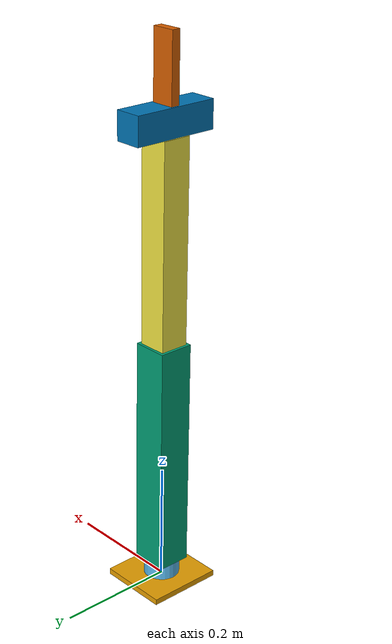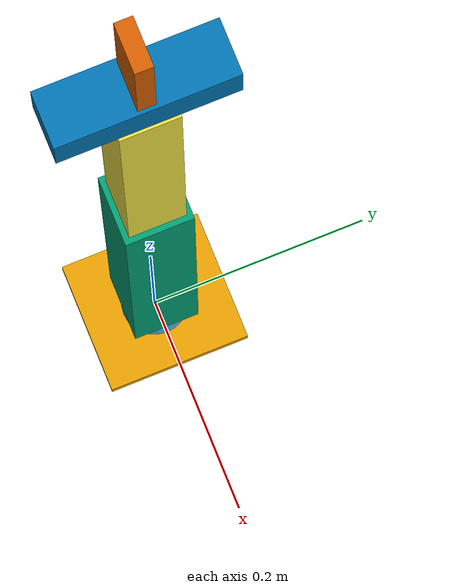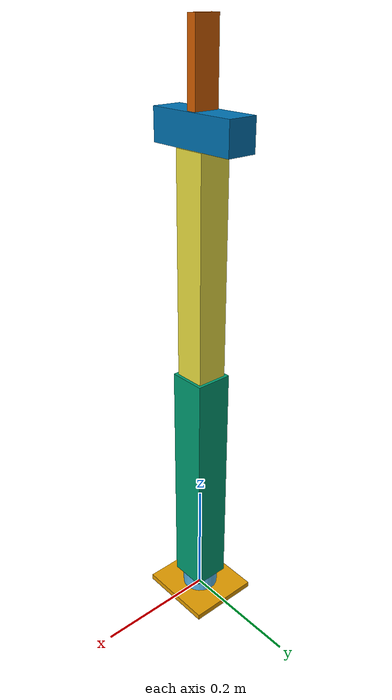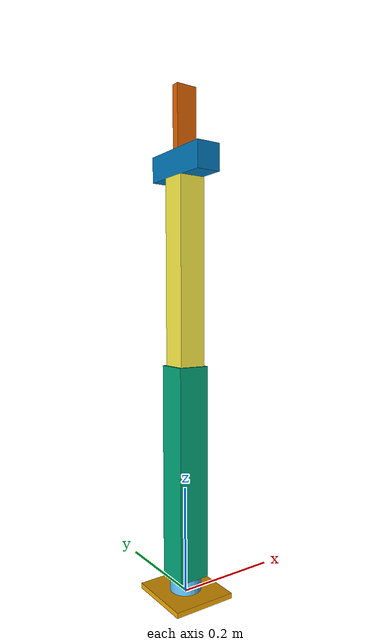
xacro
<?xml version="1.0"?>

<robot name="theia2arm" xmlns:xacro="http://www.ros.org/wiki/xacro">

        <link name="base_link">
        <visual>

                <geometry>
                        <box size="0.12 0.13 0.01" />
                </geometry>
        </visual>
        </link>

        <joint name="base_link__link_01" type="continuous">
                <axis xyz="0 0 1" />
                <limit effort="1000.0" lower="-3.14" upper="3.14" velocity="0.5" />
                <origin rpy="0 0 0" xyz="0 0 0.005"/>
                <parent link="base_link"/>
                <child link="link_01"/>
        </joint>

        <link name="link_01">
        <visual>
                <origin rpy="0 0 0" xyz="0 0 0.0135" />
                <geometry>
                        <cylinder radius="0.03" length="0.027" />
                </geometry>
        </visual>
        </link>

        <joint name="link_01__link_02" type="continuous">
                <axis xyz="0 1 0" />
                <limit effort="1000.0" lower="-3.14" upper="3.14" velocity="0.5" />
                <origin rpy="0 0 0" xyz="0 0 0.027"/>
                <parent link="link_01"/>
                <child link="link_02"/>
        </joint>

        <link name="link_02">
        <visual>
                <origin rpy="0 0 0" xyz="0 0 0.2" />
                <geometry>
                        <box size="0.06 0.06 0.4" />
                </geometry>
        </visual>
        </link>

        <joint name="link_02__link_03" type="continuous">
                <axis xyz="0 1 0" />
                <limit effort="1" lower="-3.14" upper="3.14" velocity="0.5" />
                <dynamics damping="0.0" friction="0.0"/>
                <parent link="link_02"/>
                <child link="link_03"/>
                <origin xyz=" 0 0 0.4"/>
        </joint>

        <link name="link_03">
        <visual>
                <origin xyz="0 0 0.17" />
                <geometry>
                        <box size="0.05 0.05 0.34" />
                </geometry>
        </visual>
        </link>

        <joint name="link_03__endeffector_y" type="continuous">
                <axis xyz="0 1 0" />
                <limit effort="1" lower="-3.14" upper="3.14" velocity="0.5" />
                <dynamics damping="0.0" friction="0.0"/>
                <parent link="link_03"/>
                <child link="endeffector_y"/>
                <origin rpy="0 0 0" xyz=" 0 0 0.34"/>
        </joint>

        <link name="endeffector_y">
        <visual>
                <origin rpy="0 0 0" xyz="0 0 0.0235" />
                <geometry>
                        <box size="0.046 0.148 0.047" />
                </geometry>
        </visual>
        </link>

        <joint name="endeffector_y__endeffector" type="continuous">
                <axis xyz="0 0 1" />
                <limit effort="1" lower="-3.14" upper="3.14" velocity="0.5" />
                <parent link="endeffector_y"/>
                <child link="endeffector"/>
                <origin rpy="0 0 0" xyz=" 0 0 0.047"/>
        </joint>

        <link name="endeffector">
        <visual>
                <origin rpy="0 0 0" xyz="0 0 0.056" />
                <geometry>
                        <box size="0.04 0.015 0.112" />
                </geometry>
        </visual>
        </link>

</robot>
